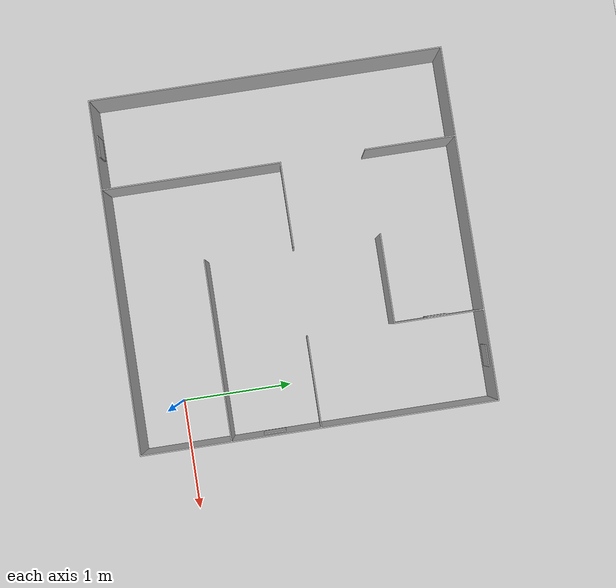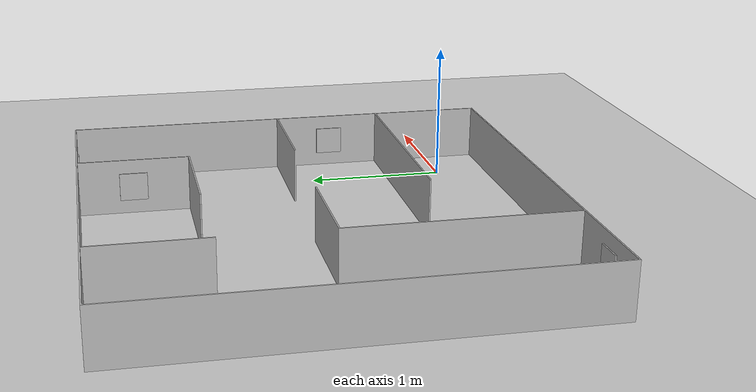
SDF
<sdf version="1.4">
  <world name="default">

    <scene>
      <ambient>0.4 0.4 0.4 1</ambient>
      <background>0.25 0.25 0.25 1</background>
      <shadows>false</shadows>
    </scene>
    <!-- A global light source -->
    <include>
      <uri>model://sun</uri>
    </include>

    <!-- A ground plane -->
    <include>
      <uri>model://ground_plane</uri>
    </include>

    <model name='maze'>
      <static>1</static>
      <link name='link'>
        <collision name='collision'>
          <geometry>
            <mesh>
              <uri>model://turtlebot3_maze/meshes/maze.stl</uri>
            </mesh>
          </geometry>
        </collision>
        <visual name='visual'>
          <cast_shadows>0</cast_shadows>
          <geometry>
            <mesh>
              <uri>model://turtlebot3_maze/meshes/maze.stl</uri>
            </mesh>
          </geometry>
        </visual>
        <visual name='one_tag'>
          <cast_shadows>0</cast_shadows>
          <pose>0.4 0.7 0.3 -1.57 0 1.57</pose>
          <geometry>
            <mesh>
              <uri>model://turtlebot3_maze/meshes/one.dae</uri>
            </mesh>
          </geometry>
        </visual>
        <visual name='two_tag'>
          <cast_shadows>0</cast_shadows>
          <pose>-0.1 2.8 0.1 1.57 0 0</pose>
          <geometry>
            <mesh>
              <uri>model://turtlebot3_maze/meshes/two.dae</uri>
            </mesh>
          </geometry>
        </visual>
        <visual name='three_tag'>
          <cast_shadows>0</cast_shadows>
          <pose>-0.41 2.3 0.3 -1.57 0 1.57</pose>
          <geometry>
            <mesh>
              <uri>model://turtlebot3_maze/meshes/three.dae</uri>
            </mesh>
          </geometry>
        </visual>
        <visual name='four_tag'>
          <cast_shadows>0</cast_shadows>
          <pose>-2.5 -0.4 0.3 -1.57 0 0</pose>
          <geometry>
            <mesh>
              <uri>model://turtlebot3_maze/meshes/four.dae</uri>
            </mesh>
          </geometry>
        </visual>
      </link>
    </model>

    <physics type="ode">
      <real_time_update_rate>1000.0</real_time_update_rate>
      <max_step_size>0.001</max_step_size>
      <real_time_factor>1</real_time_factor>
      <ode>
        <solver>
          <type>quick</type>
          <iters>150</iters>
          <precon_iters>0</precon_iters>
          <sor>1.400000</sor>
          <use_dynamic_moi_rescaling>1</use_dynamic_moi_rescaling>
        </solver>
        <constraints>
          <cfm>0.00001</cfm>
          <erp>0.2</erp>
          <contact_max_correcting_vel>2000.000000</contact_max_correcting_vel>
          <contact_surface_layer>0.01000</contact_surface_layer>
        </constraints>
      </ode>
    </physics>
  </world>

</sdf>
